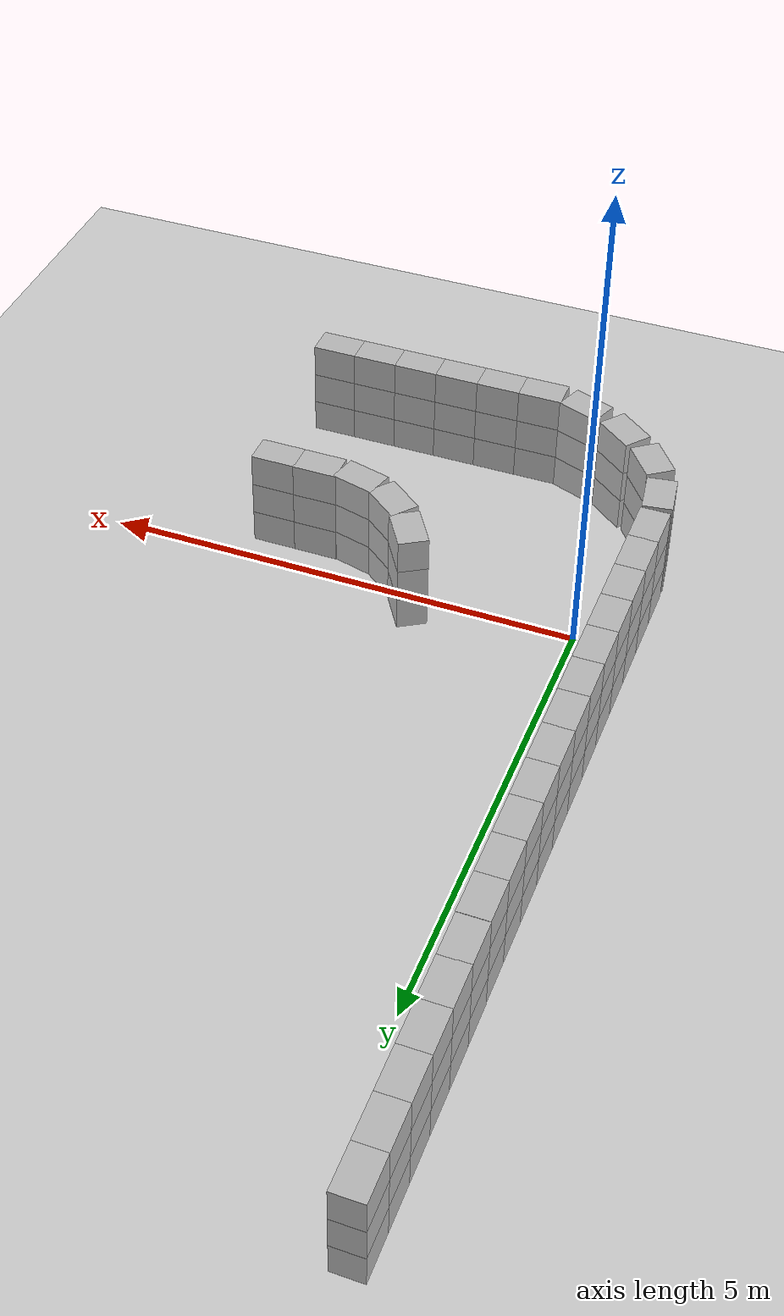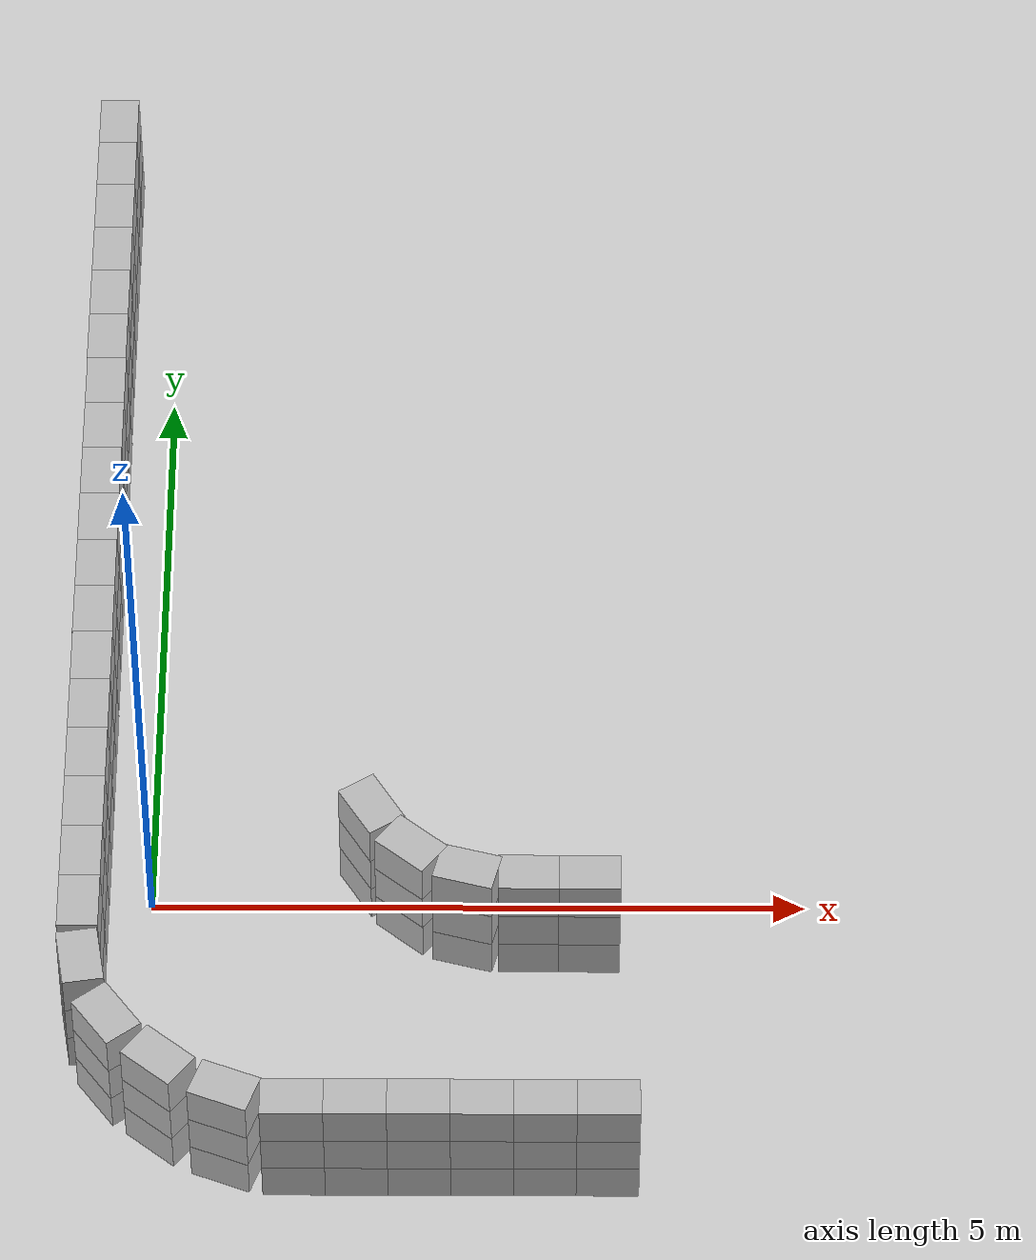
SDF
<sdf version="1.6">
 <world name="default">
  <model name="ground_plane">
   <static>1</static>
   <link name="link">
    <collision name="collision">
     <geometry><plane><normal>0 0 1</normal><size>100 100</size></plane></geometry>
     <surface>
      <contact><collide_bitmask>65535</collide_bitmask></contact>
      <friction><ode><mu>100</mu><mu2>50</mu2></ode></friction>
     </surface>
    </collision>
    <visual name="visual">
     <cast_shadows>0</cast_shadows>
     <geometry><plane><normal>0 0 1</normal><size>100 100</size></plane></geometry>
     <material>
      <script><uri>file://media/materials/scripts/gazebo.material</uri><name>Gazebo/Grey</name></script>
     </material>
    </visual>
   </link>
  </model>
  <model name="1_stack">
   <pose>0.654177 -2.37246 0 0 0 -1.93288</pose>
   <static>1</static>
   <link name="link_0">
    <collision name="collision_0">
     <pose>0 0 0.18 0 -0 3.14</pose>
     <geometry><box><size>0.31 0.465 0.36</size></box></geometry>
    </collision>
    <visual name="visual_0">
     <pose>0 0 0.18 0 -0 3.14</pose>
     <geometry><mesh><uri>model://L-corridor_curve_real/meshes/exact_blue_circle_border.dae</uri></mesh></geometry>
    </visual>
   </link>
   <link name="link_1">
    <collision name="collision_1">
     <pose>0 0 0.54 0 -0 3.14</pose>
     <geometry><box><size>0.31 0.465 0.36</size></box></geometry>
    </collision>
    <visual name="visual_1">
     <pose>0 0 0.54 0 -0 3.14</pose>
     <geometry><mesh><uri>model://L-corridor_curve_real/meshes/exact_red_circle_border.dae</uri></mesh></geometry>
    </visual>
   </link>
   <link name="link_2">
    <collision name="collision_2">
     <pose>0 0 0.9 0 -0 3.14</pose>
     <geometry><box><size>0.31 0.465 0.36</size></box></geometry>
    </collision>
    <visual name="visual_2">
     <pose>0 0 0.9 0 -0 3.14</pose>
     <geometry>
      <mesh><uri>model://L-corridor_curve_real/meshes/exact_green_circle_border.dae</uri></mesh>
     </geometry>
    </visual>
   </link>
  </model>
  <model name="1_stack_0">
   <pose>0.159717 -2.10664 0.001177 0 0 -2.24214</pose>
   <static>1</static>
   <link name="link_0">
    <collision name="collision_0">
     <pose>0 0 0.18 0 -0 3.14</pose>
     <geometry><box><size>0.31 0.465 0.36</size></box></geometry>
    </collision>
    <visual name="visual_0">
     <pose>0 0 0.18 0 -0 3.14</pose>
     <geometry><mesh><uri>model://L-corridor_curve_real/meshes/exact_blue_circle_border.dae</uri></mesh></geometry>
    </visual>
   </link>
   <link name="link_1">
    <collision name="collision_1">
     <pose>0 0 0.54 0 -0 3.14</pose>
     <geometry><box><size>0.31 0.465 0.36</size></box></geometry>
    </collision>
    <visual name="visual_1">
     <pose>0 0 0.54 0 -0 3.14</pose>
     <geometry><mesh><uri>model://L-corridor_curve_real/meshes/exact_red_circle_border.dae</uri></mesh></geometry>
    </visual>
   </link>
   <link name="link_2">
    <collision name="collision_2">
     <pose>0 0 0.9 0 -0 3.14</pose>
     <geometry><box><size>0.31 0.465 0.36</size></box></geometry>
    </collision>
    <visual name="visual_2">
     <pose>0 0 0.9 0 -0 3.14</pose>
     <geometry>
      <mesh><uri>model://L-corridor_curve_real/meshes/exact_green_circle_border.dae</uri></mesh>
     </geometry>
    </visual>
   </link>
  </model>
  <model name="1_stack_1">
   <pose>-0.453727 -1.21476 0 0 0 -2.98576</pose>
   <static>1</static>
   <link name="link_0">
    <collision name="collision_0">
     <pose>0 0 0.18 0 -0 3.14</pose>
     <geometry><box><size>0.31 0.465 0.36</size></box></geometry>
    </collision>
    <visual name="visual_0">
     <pose>0 0 0.18 0 -0 3.14</pose>
     <geometry><mesh><uri>model://L-corridor_curve_real/meshes/exact_blue_circle_border.dae</uri></mesh></geometry>
    </visual>
   </link>
   <link name="link_1">
    <collision name="collision_1">
     <pose>0 0 0.54 0 -0 3.14</pose>
     <geometry><box><size>0.31 0.465 0.36</size></box></geometry>
    </collision>
    <visual name="visual_1">
     <pose>0 0 0.54 0 -0 3.14</pose>
     <geometry><mesh><uri>model://L-corridor_curve_real/meshes/exact_red_circle_border.dae</uri></mesh></geometry>
    </visual>
   </link>
   <link name="link_2">
    <collision name="collision_2">
     <pose>0 0 0.9 0 -0 3.14</pose>
     <geometry><box><size>0.31 0.465 0.36</size></box></geometry>
    </collision>
    <visual name="visual_2">
     <pose>0 0 0.9 0 -0 3.14</pose>
     <geometry>
      <mesh><uri>model://L-corridor_curve_real/meshes/exact_green_circle_border.dae</uri></mesh>
     </geometry>
    </visual>
   </link>
  </model>
  <model name="1_stack_2">
   <pose>-0.236038 -1.73275 0 0 0 -2.4998</pose>
   <static>1</static>
   <link name="link_0">
    <collision name="collision_0">
     <pose>0 0 0.18 0 -0 3.14</pose>
     <geometry><box><size>0.31 0.465 0.36</size></box></geometry>
    </collision>
    <visual name="visual_0">
     <pose>0 0 0.18 0 -0 3.14</pose>
     <geometry><mesh><uri>model://L-corridor_curve_real/meshes/exact_blue_circle_border.dae</uri></mesh></geometry>
    </visual>
   </link>
   <link name="link_1">
    <collision name="collision_1">
     <pose>0 0 0.54 0 -0 3.14</pose>
     <geometry><box><size>0.31 0.465 0.36</size></box></geometry>
    </collision>
    <visual name="visual_1">
     <pose>0 0 0.54 0 -0 3.14</pose>
     <geometry><mesh><uri>model://L-corridor_curve_real/meshes/exact_red_circle_border.dae</uri></mesh></geometry>
    </visual>
   </link>
   <link name="link_2">
    <collision name="collision_2">
     <pose>0 0 0.9 0 -0 3.14</pose>
     <geometry><box><size>0.31 0.465 0.36</size></box></geometry>
    </collision>
    <visual name="visual_2">
     <pose>0 0 0.9 0 -0 3.14</pose>
     <geometry>
      <mesh><uri>model://L-corridor_curve_real/meshes/exact_green_circle_border.dae</uri></mesh>
     </geometry>
    </visual>
   </link>
  </model>
  <model name="realistic_curve_side2_2">
   <pose>3.96434 -1.14657 0 0 -0 1.5708</pose>
   <static>1</static>
   <link name="link_18_0">
    <collision name="collision_18_0">
     <pose>0.9 4.45 0.9 3.14159 -1.57079 3.14159</pose>
     <geometry><box><size>0.31 0.465 0.36</size></box></geometry>
    </collision>
    <visual name="visual_18_0">
     <pose>0.9 4.45 0.9 0 0 -1.5708</pose>
     <geometry><mesh><uri>model://L-corridor_curve_real/meshes/exact_blue_circle_border.dae</uri></mesh></geometry>
    </visual>
   </link>
   <link name="link_19_0">
    <collision name="collision_19_0">
     <pose>0.9 4.45 0.18 0 0 -1.5708</pose>
     <geometry><box><size>0.31 0.465 0.36</size></box></geometry>
    </collision>
    <visual name="visual_19_0">
     <pose>0.9 4.45 0.18 0 0 -1.5708</pose>
     <geometry><mesh><uri>model://L-corridor_curve_real/meshes/exact_red_circle_border.dae</uri></mesh></geometry>
    </visual>
   </link>
   <link name="link_20_0">
    <collision name="collision_20_0">
     <pose>0.9 4.45 0.54 0 0 -1.5708</pose>
     <geometry><box><size>0.31 0.465 0.36</size></box></geometry>
    </collision>
    <visual name="visual_20_0">
     <pose>0.9 4.45 0.54 0 0 -1.5708</pose>
     <geometry>
      <mesh><uri>model://L-corridor_curve_real/meshes/exact_green_circle_border.dae</uri></mesh>
     </geometry>
    </visual>
   </link>
   <link name="link_21_0">
    <collision name="collision_21_0">
     <pose>1.365 4.45 0.18 0 0 -1.5708</pose>
     <geometry><box><size>0.31 0.465 0.36</size></box></geometry>
    </collision>
    <visual name="visual_21_0">
     <pose>1.365 4.45 0.18 0 0 -1.5708</pose>
     <geometry><mesh><uri>model://L-corridor_curve_real/meshes/exact_blue_circle_border.dae</uri></mesh></geometry>
    </visual>
   </link>
   <link name="link_22_0">
    <collision name="collision_22_0">
     <pose>1.365 4.45 0.54 0 0 -1.5708</pose>
     <geometry><box><size>0.31 0.465 0.36</size></box></geometry>
    </collision>
    <visual name="visual_22_0">
     <pose>1.365 4.45 0.54 0 0 -1.5708</pose>
     <geometry><mesh><uri>model://L-corridor_curve_real/meshes/exact_red_circle_border.dae</uri></mesh></geometry>
    </visual>
   </link>
   <link name="link_23_0">
    <collision name="collision_23_0">
     <pose>1.365 4.45 0.9 0 0 -1.5708</pose>
     <geometry><box><size>0.31 0.465 0.36</size></box></geometry>
    </collision>
    <visual name="visual_23_0">
     <pose>1.365 4.45 0.9 0 0 -1.5708</pose>
     <geometry>
      <mesh><uri>model://L-corridor_curve_real/meshes/exact_green_circle_border.dae</uri></mesh>
     </geometry>
    </visual>
   </link>
   <link name="link_24_0">
    <collision name="collision_24_0">
     <pose>1.83 4.45 0.54 0 0 -1.5708</pose>
     <geometry><box><size>0.31 0.465 0.36</size></box></geometry>
    </collision>
    <visual name="visual_24_0">
     <pose>1.83 4.45 0.54 0 0 -1.5708</pose>
     <geometry><mesh><uri>model://L-corridor_curve_real/meshes/exact_blue_circle_border.dae</uri></mesh></geometry>
    </visual>
   </link>
   <link name="link_25_0">
    <collision name="collision_25_0">
     <pose>1.83 4.45 0.9 0 0 -1.5708</pose>
     <geometry><box><size>0.31 0.465 0.36</size></box></geometry>
    </collision>
    <visual name="visual_25_0">
     <pose>1.83 4.45 0.9 0 0 -1.5708</pose>
     <geometry><mesh><uri>model://L-corridor_curve_real/meshes/exact_red_circle_border.dae</uri></mesh></geometry>
    </visual>
   </link>
   <link name="link_26_0">
    <collision name="collision_26_0">
     <pose>1.83 4.45 0.18 0 0 -1.5708</pose>
     <geometry><box><size>0.31 0.465 0.36</size></box></geometry>
    </collision>
    <visual name="visual_26_0">
     <pose>1.83 4.45 0.18 0 0 -1.5708</pose>
     <geometry>
      <mesh><uri>model://L-corridor_curve_real/meshes/exact_green_circle_border.dae</uri></mesh>
     </geometry>
    </visual>
   </link>
   <link name="link_27_0">
    <collision name="collision_27_0">
     <pose>2.295 4.45 0.9 3.14159 -1.57079 3.14159</pose>
     <geometry><box><size>0.31 0.465 0.36</size></box></geometry>
    </collision>
    <visual name="visual_27_0">
     <pose>2.295 4.45 0.9 0 0 -1.5708</pose>
     <geometry><mesh><uri>model://L-corridor_curve_real/meshes/exact_blue_circle_border.dae</uri></mesh></geometry>
    </visual>
   </link>
   <link name="link_28_0">
    <collision name="collision_28_0">
     <pose>2.295 4.45 0.18 0 0 -1.5708</pose>
     <geometry><box><size>0.31 0.465 0.36</size></box></geometry>
    </collision>
    <visual name="visual_28_0">
     <pose>2.295 4.45 0.18 0 0 -1.5708</pose>
     <geometry><mesh><uri>model://L-corridor_curve_real/meshes/exact_red_circle_border.dae</uri></mesh></geometry>
    </visual>
   </link>
   <link name="link_29_0">
    <collision name="collision_29_0">
     <pose>2.295 4.45 0.54 0 0 -1.5708</pose>
     <geometry><box><size>0.31 0.465 0.36</size></box></geometry>
    </collision>
    <visual name="visual_29_0">
     <pose>2.295 4.45 0.54 0 0 -1.5708</pose>
     <geometry>
      <mesh><uri>model://L-corridor_curve_real/meshes/exact_green_circle_border.dae</uri></mesh>
     </geometry>
    </visual>
   </link>
   <link name="link_30_0">
    <collision name="collision_30_0">
     <pose>2.76 4.45 0.18 0 0 -1.5708</pose>
     <geometry><box><size>0.31 0.465 0.36</size></box></geometry>
    </collision>
    <visual name="visual_30_0">
     <pose>2.76 4.45 0.18 0 0 -1.5708</pose>
     <geometry><mesh><uri>model://L-corridor_curve_real/meshes/exact_blue_circle_border.dae</uri></mesh></geometry>
    </visual>
   </link>
   <link name="link_31_0">
    <collision name="collision_31_0">
     <pose>2.76 4.45 0.54 0 0 -1.5708</pose>
     <geometry><box><size>0.31 0.465 0.36</size></box></geometry>
    </collision>
    <visual name="visual_31_0">
     <pose>2.76 4.45 0.54 0 0 -1.5708</pose>
     <geometry><mesh><uri>model://L-corridor_curve_real/meshes/exact_red_circle_border.dae</uri></mesh></geometry>
    </visual>
   </link>
   <link name="link_32_0">
    <collision name="collision_32_0">
     <pose>2.76 4.45 0.9 0 0 -1.5708</pose>
     <geometry><box><size>0.31 0.465 0.36</size></box></geometry>
    </collision>
    <visual name="visual_32_0">
     <pose>2.76 4.45 0.9 0 0 -1.5708</pose>
     <geometry>
      <mesh><uri>model://L-corridor_curve_real/meshes/exact_green_circle_border.dae</uri></mesh>
     </geometry>
    </visual>
   </link>
   <link name="link_33_0">
    <collision name="collision_33_0">
     <pose>0.44 4.45 0.54 0 0 -1.5708</pose>
     <geometry><box><size>0.31 0.465 0.36</size></box></geometry>
    </collision>
    <visual name="visual_33_0">
     <pose>0.44 4.45 0.54 0 0 -1.5708</pose>
     <geometry><mesh><uri>model://L-corridor_curve_real/meshes/exact_blue_circle_border.dae</uri></mesh></geometry>
    </visual>
   </link>
   <link name="link_34_0">
    <collision name="collision_34_0">
     <pose>0.4 4.45 0.9 0 0 -1.5708</pose>
     <geometry><box><size>0.31 0.465 0.36</size></box></geometry>
    </collision>
    <visual name="visual_34_0">
     <pose>0.44 4.45 0.9 0 0 -1.5708</pose>
     <geometry><mesh><uri>model://L-corridor_curve_real/meshes/exact_red_circle_border.dae</uri></mesh></geometry>
    </visual>
   </link>
   <link name="link_35_0">
    <collision name="collision_35_0">
     <pose>0.44 4.45 0.18 0 0 -1.5708</pose>
     <geometry><box><size>0.31 0.465 0.36</size></box></geometry>
    </collision>
    <visual name="visual_35_0">
     <pose>0.44 4.45 0.18 0 0 -1.5708</pose>
     <geometry>
      <mesh><uri>model://L-corridor_curve_real/meshes/exact_green_circle_border.dae</uri></mesh>
     </geometry>
    </visual>
   </link>
  </model>
  <model name="realistic_curve_side2_2_0">
   <pose>3.96188 1.62711 0 0 -0 1.5708</pose>
   <static>1</static>
   <link name="link_18_0">
    <collision name="collision_18_0">
     <pose>0.9 4.45 0.9 3.14159 -1.57079 3.14159</pose>
     <geometry><box><size>0.31 0.465 0.36</size></box></geometry>
    </collision>
    <visual name="visual_18_0">
     <pose>0.9 4.45 0.9 0 0 -1.5708</pose>
     <geometry><mesh><uri>model://L-corridor_curve_real/meshes/exact_blue_circle_border.dae</uri></mesh></geometry>
    </visual>
   </link>
   <link name="link_19_0">
    <collision name="collision_19_0">
     <pose>0.9 4.45 0.18 0 0 -1.5708</pose>
     <geometry><box><size>0.31 0.465 0.36</size></box></geometry>
    </collision>
    <visual name="visual_19_0">
     <pose>0.9 4.45 0.18 0 0 -1.5708</pose>
     <geometry><mesh><uri>model://L-corridor_curve_real/meshes/exact_red_circle_border.dae</uri></mesh></geometry>
    </visual>
   </link>
   <link name="link_20_0">
    <collision name="collision_20_0">
     <pose>0.9 4.45 0.54 0 0 -1.5708</pose>
     <geometry><box><size>0.31 0.465 0.36</size></box></geometry>
    </collision>
    <visual name="visual_20_0">
     <pose>0.9 4.45 0.54 0 0 -1.5708</pose>
     <geometry>
      <mesh><uri>model://L-corridor_curve_real/meshes/exact_green_circle_border.dae</uri></mesh>
     </geometry>
    </visual>
   </link>
   <link name="link_21_0">
    <collision name="collision_21_0">
     <pose>1.365 4.45 0.18 0 0 -1.5708</pose>
     <geometry><box><size>0.31 0.465 0.36</size></box></geometry>
    </collision>
    <visual name="visual_21_0">
     <pose>1.365 4.45 0.18 0 0 -1.5708</pose>
     <geometry><mesh><uri>model://L-corridor_curve_real/meshes/exact_blue_circle_border.dae</uri></mesh></geometry>
    </visual>
   </link>
   <link name="link_22_0">
    <collision name="collision_22_0">
     <pose>1.365 4.45 0.54 0 0 -1.5708</pose>
     <geometry><box><size>0.31 0.465 0.36</size></box></geometry>
    </collision>
    <visual name="visual_22_0">
     <pose>1.365 4.45 0.54 0 0 -1.5708</pose>
     <geometry><mesh><uri>model://L-corridor_curve_real/meshes/exact_red_circle_border.dae</uri></mesh></geometry>
    </visual>
   </link>
   <link name="link_23_0">
    <collision name="collision_23_0">
     <pose>1.365 4.45 0.9 0 0 -1.5708</pose>
     <geometry><box><size>0.31 0.465 0.36</size></box></geometry>
    </collision>
    <visual name="visual_23_0">
     <pose>1.365 4.45 0.9 0 0 -1.5708</pose>
     <geometry>
      <mesh><uri>model://L-corridor_curve_real/meshes/exact_green_circle_border.dae</uri></mesh>
     </geometry>
    </visual>
   </link>
   <link name="link_24_0">
    <collision name="collision_24_0">
     <pose>1.83 4.45 0.54 0 0 -1.5708</pose>
     <geometry><box><size>0.31 0.465 0.36</size></box></geometry>
    </collision>
    <visual name="visual_24_0">
     <pose>1.83 4.45 0.54 0 0 -1.5708</pose>
     <geometry><mesh><uri>model://L-corridor_curve_real/meshes/exact_blue_circle_border.dae</uri></mesh></geometry>
    </visual>
   </link>
   <link name="link_25_0">
    <collision name="collision_25_0">
     <pose>1.83 4.45 0.9 0 0 -1.5708</pose>
     <geometry><box><size>0.31 0.465 0.36</size></box></geometry>
    </collision>
    <visual name="visual_25_0">
     <pose>1.83 4.45 0.9 0 0 -1.5708</pose>
     <geometry><mesh><uri>model://L-corridor_curve_real/meshes/exact_red_circle_border.dae</uri></mesh></geometry>
    </visual>
   </link>
   <link name="link_26_0">
    <collision name="collision_26_0">
     <pose>1.83 4.45 0.18 0 0 -1.5708</pose>
     <geometry><box><size>0.31 0.465 0.36</size></box></geometry>
    </collision>
    <visual name="visual_26_0">
     <pose>1.83 4.45 0.18 0 0 -1.5708</pose>
     <geometry>
      <mesh><uri>model://L-corridor_curve_real/meshes/exact_green_circle_border.dae</uri></mesh>
     </geometry>
    </visual>
   </link>
   <link name="link_27_0">
    <collision name="collision_27_0">
     <pose>2.295 4.45 0.9 3.14159 -1.57079 3.14159</pose>
     <geometry><box><size>0.31 0.465 0.36</size></box></geometry>
    </collision>
    <visual name="visual_27_0">
     <pose>2.295 4.45 0.9 0 0 -1.5708</pose>
     <geometry><mesh><uri>model://L-corridor_curve_real/meshes/exact_blue_circle_border.dae</uri></mesh></geometry>
    </visual>
   </link>
   <link name="link_28_0">
    <collision name="collision_28_0">
     <pose>2.295 4.45 0.18 0 0 -1.5708</pose>
     <geometry><box><size>0.31 0.465 0.36</size></box></geometry>
    </collision>
    <visual name="visual_28_0">
     <pose>2.295 4.45 0.18 0 0 -1.5708</pose>
     <geometry><mesh><uri>model://L-corridor_curve_real/meshes/exact_red_circle_border.dae</uri></mesh></geometry>
    </visual>
   </link>
   <link name="link_29_0">
    <collision name="collision_29_0">
     <pose>2.295 4.45 0.54 0 0 -1.5708</pose>
     <geometry><box><size>0.31 0.465 0.36</size></box></geometry>
    </collision>
    <visual name="visual_29_0">
     <pose>2.295 4.45 0.54 0 0 -1.5708</pose>
     <geometry>
      <mesh><uri>model://L-corridor_curve_real/meshes/exact_green_circle_border.dae</uri></mesh>
     </geometry>
    </visual>
   </link>
   <link name="link_30_0">
    <collision name="collision_30_0">
     <pose>2.76 4.45 0.18 0 0 -1.5708</pose>
     <geometry><box><size>0.31 0.465 0.36</size></box></geometry>
    </collision>
    <visual name="visual_30_0">
     <pose>2.76 4.45 0.18 0 0 -1.5708</pose>
     <geometry><mesh><uri>model://L-corridor_curve_real/meshes/exact_blue_circle_border.dae</uri></mesh></geometry>
    </visual>
   </link>
   <link name="link_31_0">
    <collision name="collision_31_0">
     <pose>2.76 4.45 0.54 0 0 -1.5708</pose>
     <geometry><box><size>0.31 0.465 0.36</size></box></geometry>
    </collision>
    <visual name="visual_31_0">
     <pose>2.76 4.45 0.54 0 0 -1.5708</pose>
     <geometry><mesh><uri>model://L-corridor_curve_real/meshes/exact_red_circle_border.dae</uri></mesh></geometry>
    </visual>
   </link>
   <link name="link_32_0">
    <collision name="collision_32_0">
     <pose>2.76 4.45 0.9 0 0 -1.5708</pose>
     <geometry><box><size>0.31 0.465 0.36</size></box></geometry>
    </collision>
    <visual name="visual_32_0">
     <pose>2.76 4.45 0.9 0 0 -1.5708</pose>
     <geometry>
      <mesh><uri>model://L-corridor_curve_real/meshes/exact_green_circle_border.dae</uri></mesh>
     </geometry>
    </visual>
   </link>
   <link name="link_33_0">
    <collision name="collision_33_0">
     <pose>0.44 4.45 0.54 0 0 -1.5708</pose>
     <geometry><box><size>0.31 0.465 0.36</size></box></geometry>
    </collision>
    <visual name="visual_33_0">
     <pose>0.44 4.45 0.54 0 0 -1.5708</pose>
     <geometry><mesh><uri>model://L-corridor_curve_real/meshes/exact_blue_circle_border.dae</uri></mesh></geometry>
    </visual>
   </link>
   <link name="link_34_0">
    <collision name="collision_34_0">
     <pose>0.4 4.45 0.9 0 0 -1.5708</pose>
     <geometry><box><size>0.31 0.465 0.36</size></box></geometry>
    </collision>
    <visual name="visual_34_0">
     <pose>0.44 4.45 0.9 0 0 -1.5708</pose>
     <geometry><mesh><uri>model://L-corridor_curve_real/meshes/exact_red_circle_border.dae</uri></mesh></geometry>
    </visual>
   </link>
   <link name="link_35_0">
    <collision name="collision_35_0">
     <pose>0.44 4.45 0.18 0 0 -1.5708</pose>
     <geometry><box><size>0.31 0.465 0.36</size></box></geometry>
    </collision>
    <visual name="visual_35_0">
     <pose>0.44 4.45 0.18 0 0 -1.5708</pose>
     <geometry>
      <mesh><uri>model://L-corridor_curve_real/meshes/exact_green_circle_border.dae</uri></mesh>
     </geometry>
    </visual>
   </link>
  </model>
  <model name="realistic_curve_side2_1">
   <pose>3.4742 -1.16832 0 0 -0 1.5708</pose>
   <static>1</static>
   <link name="link_0_0">
    <collision name="collision_0_0">
     <pose>-1.3 0 0.18 0 -0 0</pose>
     <geometry><box><size>0.31 0.465 0.36</size></box></geometry>
    </collision>
    <visual name="visual_0_0">
     <pose>-1.3 0 0.18 0 -0 0</pose>
     <geometry><mesh><uri>model://L-corridor_curve_real/meshes/exact_blue_circle_border.dae</uri></mesh></geometry>
    </visual>
   </link>
   <link name="link_1_0">
    <collision name="collision_1_0">
     <pose>-1.3 0.54 0 0 -0 0</pose>
     <geometry><box><size>0.31 0.465 0.36</size></box></geometry>
    </collision>
    <visual name="visual_1_0">
     <pose>-1.3 0 0.54 0 -0 0</pose>
     <geometry><mesh><uri>model://L-corridor_curve_real/meshes/exact_red_circle_border.dae</uri></mesh></geometry>
    </visual>
   </link>
   <link name="link_2_0">
    <collision name="collision_2_0">
     <pose>-1.3 0 0.9 0 -0 0</pose>
     <geometry><box><size>0.31 0.465 0.36</size></box></geometry>
    </collision>
    <visual name="visual_2_0">
     <pose>-1.3 0 0.9 0 -0 0</pose>
     <geometry>
      <mesh><uri>model://L-corridor_curve_real/meshes/exact_green_circle_border.dae</uri></mesh>
     </geometry>
    </visual>
   </link>
   <link name="link_3_0">
    <collision name="collision_3_0">
     <pose>-1.3 0.465 0.54 0 -0 0</pose>
     <geometry><box><size>0.31 0.465 0.36</size></box></geometry>
    </collision>
    <visual name="visual_3_0">
     <pose>-1.3 0.465 0.54 0 -0 0</pose>
     <geometry><mesh><uri>model://L-corridor_curve_real/meshes/exact_blue_circle_border.dae</uri></mesh></geometry>
    </visual>
   </link>
   <link name="link_4_0">
    <collision name="collision_4_0">
     <pose>-1.3 0.465 0.9 0 -0 0</pose>
     <geometry><box><size>0.31 0.465 0.36</size></box></geometry>
    </collision>
    <visual name="visual_4_0">
     <pose>-1.3 0.465 0.9 0 -0 0</pose>
     <geometry><mesh><uri>model://L-corridor_curve_real/meshes/exact_red_circle_border.dae</uri></mesh></geometry>
    </visual>
   </link>
   <link name="link_5_0">
    <collision name="collision_5_0">
     <pose>-1.3 0.465 0.18 0 -0 0</pose>
     <geometry><box><size>0.31 0.465 0.36</size></box></geometry>
    </collision>
    <visual name="visual_5_0">
     <pose>-1.3 0.465 0.18 0 -0 0</pose>
     <geometry>
      <mesh><uri>model://L-corridor_curve_real/meshes/exact_green_circle_border.dae</uri></mesh>
     </geometry>
    </visual>
   </link>
   <link name="link_6_0">
    <collision name="collision_6_0">
     <pose>-1.3 0.93 0.9 0 -0 0</pose>
     <geometry><box><size>0.31 0.465 0.36</size></box></geometry>
    </collision>
    <visual name="visual_6_0">
     <pose>-1.3 0.93 0.9 0 -0 0</pose>
     <geometry><mesh><uri>model://L-corridor_curve_real/meshes/exact_blue_circle_border.dae</uri></mesh></geometry>
    </visual>
   </link>
   <link name="link_7_0">
    <collision name="collision_7_0">
     <pose>-1.3 0.93 0.18 0 -0 0</pose>
     <geometry><box><size>0.31 0.465 0.36</size></box></geometry>
    </collision>
    <visual name="visual_7_0">
     <pose>-1.3 0.93 0.18 0 -0 0</pose>
     <geometry><mesh><uri>model://L-corridor_curve_real/meshes/exact_red_circle_border.dae</uri></mesh></geometry>
    </visual>
   </link>
   <link name="link_8_0">
    <collision name="collision_8_0">
     <pose>-1.3 0.93 0.54 0 -0 0</pose>
     <geometry><box><size>0.31 0.465 0.36</size></box></geometry>
    </collision>
    <visual name="visual_8_0">
     <pose>-1.3 0.93 0.54 0 -0 0</pose>
     <geometry>
      <mesh><uri>model://L-corridor_curve_real/meshes/exact_green_circle_border.dae</uri></mesh>
     </geometry>
    </visual>
   </link>
   <link name="link_9_0">
    <collision name="collision_9_0">
     <pose>-1.3 1.395 0.18 0 -0 0</pose>
     <geometry><box><size>0.31 0.465 0.36</size></box></geometry>
    </collision>
    <visual name="visual_9_0">
     <pose>-1.3 1.395 0.18 0 -0 0</pose>
     <geometry><mesh><uri>model://L-corridor_curve_real/meshes/exact_blue_circle_border.dae</uri></mesh></geometry>
    </visual>
   </link>
   <link name="link_10_0">
    <collision name="collision_10_0">
     <pose>-1.3 1.395 0.54 0 -0 0</pose>
     <geometry><box><size>0.31 0.465 0.36</size></box></geometry>
    </collision>
    <visual name="visual_10_0">
     <pose>-1.3 1.395 0.54 0 -0 0</pose>
     <geometry><mesh><uri>model://L-corridor_curve_real/meshes/exact_red_circle_border.dae</uri></mesh></geometry>
    </visual>
   </link>
   <link name="link_11_0">
    <collision name="collision_11_0">
     <pose>-1.3 1.395 0.9 0 -0 0</pose>
     <geometry><box><size>0.31 0.465 0.36</size></box></geometry>
    </collision>
    <visual name="visual_11_0">
     <pose>-1.3 1.395 0.9 0 -0 0</pose>
     <geometry>
      <mesh><uri>model://L-corridor_curve_real/meshes/exact_green_circle_border.dae</uri></mesh>
     </geometry>
    </visual>
   </link>
   <link name="link_12_0">
    <collision name="collision_12_0">
     <pose>-1.3 1.86 0.54 0 -0 0</pose>
     <geometry><box><size>0.31 0.465 0.36</size></box></geometry>
    </collision>
    <visual name="visual_12_0">
     <pose>-1.3 1.86 0.54 0 -0 0</pose>
     <geometry><mesh><uri>model://L-corridor_curve_real/meshes/exact_blue_circle_border.dae</uri></mesh></geometry>
    </visual>
   </link>
   <link name="link_13_0">
    <collision name="collision_13_0">
     <pose>-1.3 1.86 0.9 0 -0 0</pose>
     <geometry><box><size>0.31 0.465 0.36</size></box></geometry>
    </collision>
    <visual name="visual_13_0">
     <pose>-1.3 1.86 0.9 0 -0 0</pose>
     <geometry><mesh><uri>model://L-corridor_curve_real/meshes/exact_red_circle_border.dae</uri></mesh></geometry>
    </visual>
   </link>
   <link name="link_14_0">
    <collision name="collision_14_0">
     <pose>-1.3 1.86 0.18 0 -0 0</pose>
     <geometry><box><size>0.31 0.465 0.36</size></box></geometry>
    </collision>
    <visual name="visual_14_0">
     <pose>-1.3 1.86 0.18 0 -0 0</pose>
     <geometry>
      <mesh><uri>model://L-corridor_curve_real/meshes/exact_green_circle_border.dae</uri></mesh>
     </geometry>
    </visual>
   </link>
   <link name="link_15_0">
    <collision name="collision_15_0">
     <pose>-1.3 2.325 0 0 -0 0</pose>
     <geometry><box><size>0.31 0.465 0.36</size></box></geometry>
    </collision>
    <visual name="visual_15_0">
     <pose>-1.3 2.325 0.9 0 -0 0</pose>
     <geometry><mesh><uri>model://L-corridor_curve_real/meshes/exact_blue_circle_border.dae</uri></mesh></geometry>
    </visual>
   </link>
   <link name="link_16_0">
    <collision name="collision_16_0">
     <pose>-1.3 2.325 0.18 0 -0 0</pose>
     <geometry><box><size>0.31 0.465 0.36</size></box></geometry>
    </collision>
    <visual name="visual_16_0">
     <pose>-1.3 2.325 0.18 0 -0 0</pose>
     <geometry><mesh><uri>model://L-corridor_curve_real/meshes/exact_red_circle_border.dae</uri></mesh></geometry>
    </visual>
   </link>
   <link name="link_17_0">
    <collision name="collision_17_0">
     <pose>-1.3 2.325 0.54 0 -0 0</pose>
     <geometry><box><size>0.31 0.465 0.36</size></box></geometry>
    </collision>
    <visual name="visual_17_0">
     <pose>-1.3 2.325 0.54 0 -0 0</pose>
     <geometry>
      <mesh><uri>model://L-corridor_curve_real/meshes/exact_green_circle_border.dae</uri></mesh>
     </geometry>
    </visual>
   </link>
  </model>
  <model name="1_stack_3">
   <pose>3.34415 -0.438532 0 0 -0 1.5708</pose>
   <static>1</static>
   <link name="link_0">
    <collision name="collision_0">
     <pose>0 0 0.18 0 -0 3.14</pose>
     <geometry><box><size>0.31 0.465 0.36</size></box></geometry>
    </collision>
    <visual name="visual_0">
     <pose>0 0 0.18 0 -0 3.14</pose>
     <geometry><mesh><uri>model://L-corridor_curve_real/meshes/exact_blue_circle_border.dae</uri></mesh></geometry>
    </visual>
   </link>
   <link name="link_1">
    <collision name="collision_1">
     <pose>0 0 0.54 0 -0 3.14</pose>
     <geometry><box><size>0.31 0.465 0.36</size></box></geometry>
    </collision>
    <visual name="visual_1">
     <pose>0 0 0.54 0 -0 3.14</pose>
     <geometry><mesh><uri>model://L-corridor_curve_real/meshes/exact_red_circle_border.dae</uri></mesh></geometry>
    </visual>
   </link>
   <link name="link_2">
    <collision name="collision_2">
     <pose>0 0 0.9 0 -0 3.14</pose>
     <geometry><box><size>0.31 0.465 0.36</size></box></geometry>
    </collision>
    <visual name="visual_2">
     <pose>0 0 0.9 0 -0 3.14</pose>
     <geometry>
      <mesh><uri>model://L-corridor_curve_real/meshes/exact_green_circle_border.dae</uri></mesh>
     </geometry>
    </visual>
   </link>
  </model>
  <model name="realistic_curve_side2_2_1">
   <pose>3.95777 4.41522 0 0 -0 1.5708</pose>
   <static>1</static>
   <link name="link_18_0">
    <collision name="collision_18_0">
     <pose>0.9 4.45 0.9 3.14159 -1.57079 3.14159</pose>
     <geometry><box><size>0.31 0.465 0.36</size></box></geometry>
    </collision>
    <visual name="visual_18_0">
     <pose>0.9 4.45 0.9 0 0 -1.5708</pose>
     <geometry><mesh><uri>model://L-corridor_curve_real/meshes/exact_blue_circle_border.dae</uri></mesh></geometry>
    </visual>
   </link>
   <link name="link_19_0">
    <collision name="collision_19_0">
     <pose>0.9 4.45 0.18 0 0 -1.5708</pose>
     <geometry><box><size>0.31 0.465 0.36</size></box></geometry>
    </collision>
    <visual name="visual_19_0">
     <pose>0.9 4.45 0.18 0 0 -1.5708</pose>
     <geometry><mesh><uri>model://L-corridor_curve_real/meshes/exact_red_circle_border.dae</uri></mesh></geometry>
    </visual>
   </link>
   <link name="link_20_0">
    <collision name="collision_20_0">
     <pose>0.9 4.45 0.54 0 0 -1.5708</pose>
     <geometry><box><size>0.31 0.465 0.36</size></box></geometry>
    </collision>
    <visual name="visual_20_0">
     <pose>0.9 4.45 0.54 0 0 -1.5708</pose>
     <geometry>
      <mesh><uri>model://L-corridor_curve_real/meshes/exact_green_circle_border.dae</uri></mesh>
     </geometry>
    </visual>
   </link>
   <link name="link_21_0">
    <collision name="collision_21_0">
     <pose>1.365 4.45 0.18 0 0 -1.5708</pose>
     <geometry><box><size>0.31 0.465 0.36</size></box></geometry>
    </collision>
    <visual name="visual_21_0">
     <pose>1.365 4.45 0.18 0 0 -1.5708</pose>
     <geometry><mesh><uri>model://L-corridor_curve_real/meshes/exact_blue_circle_border.dae</uri></mesh></geometry>
    </visual>
   </link>
   <link name="link_22_0">
    <collision name="collision_22_0">
     <pose>1.365 4.45 0.54 0 0 -1.5708</pose>
     <geometry><box><size>0.31 0.465 0.36</size></box></geometry>
    </collision>
    <visual name="visual_22_0">
     <pose>1.365 4.45 0.54 0 0 -1.5708</pose>
     <geometry><mesh><uri>model://L-corridor_curve_real/meshes/exact_red_circle_border.dae</uri></mesh></geometry>
    </visual>
   </link>
   <link name="link_23_0">
    <collision name="collision_23_0">
     <pose>1.365 4.45 0.9 0 0 -1.5708</pose>
     <geometry><box><size>0.31 0.465 0.36</size></box></geometry>
    </collision>
    <visual name="visual_23_0">
     <pose>1.365 4.45 0.9 0 0 -1.5708</pose>
     <geometry>
      <mesh><uri>model://L-corridor_curve_real/meshes/exact_green_circle_border.dae</uri></mesh>
     </geometry>
    </visual>
   </link>
   <link name="link_24_0">
    <collision name="collision_24_0">
     <pose>1.83 4.45 0.54 0 0 -1.5708</pose>
     <geometry><box><size>0.31 0.465 0.36</size></box></geometry>
    </collision>
    <visual name="visual_24_0">
     <pose>1.83 4.45 0.54 0 0 -1.5708</pose>
     <geometry><mesh><uri>model://L-corridor_curve_real/meshes/exact_blue_circle_border.dae</uri></mesh></geometry>
    </visual>
   </link>
   <link name="link_25_0">
    <collision name="collision_25_0">
     <pose>1.83 4.45 0.9 0 0 -1.5708</pose>
     <geometry><box><size>0.31 0.465 0.36</size></box></geometry>
    </collision>
    <visual name="visual_25_0">
     <pose>1.83 4.45 0.9 0 0 -1.5708</pose>
     <geometry><mesh><uri>model://L-corridor_curve_real/meshes/exact_red_circle_border.dae</uri></mesh></geometry>
    </visual>
   </link>
   <link name="link_26_0">
    <collision name="collision_26_0">
     <pose>1.83 4.45 0.18 0 0 -1.5708</pose>
     <geometry><box><size>0.31 0.465 0.36</size></box></geometry>
    </collision>
    <visual name="visual_26_0">
     <pose>1.83 4.45 0.18 0 0 -1.5708</pose>
     <geometry>
      <mesh><uri>model://L-corridor_curve_real/meshes/exact_green_circle_border.dae</uri></mesh>
     </geometry>
    </visual>
   </link>
   <link name="link_27_0">
    <collision name="collision_27_0">
     <pose>2.295 4.45 0.9 3.14159 -1.57079 3.14159</pose>
     <geometry><box><size>0.31 0.465 0.36</size></box></geometry>
    </collision>
    <visual name="visual_27_0">
     <pose>2.295 4.45 0.9 0 0 -1.5708</pose>
     <geometry><mesh><uri>model://L-corridor_curve_real/meshes/exact_blue_circle_border.dae</uri></mesh></geometry>
    </visual>
   </link>
   <link name="link_28_0">
    <collision name="collision_28_0">
     <pose>2.295 4.45 0.18 0 0 -1.5708</pose>
     <geometry><box><size>0.31 0.465 0.36</size></box></geometry>
    </collision>
    <visual name="visual_28_0">
     <pose>2.295 4.45 0.18 0 0 -1.5708</pose>
     <geometry><mesh><uri>model://L-corridor_curve_real/meshes/exact_red_circle_border.dae</uri></mesh></geometry>
    </visual>
   </link>
   <link name="link_29_0">
    <collision name="collision_29_0">
     <pose>2.295 4.45 0.54 0 0 -1.5708</pose>
     <geometry><box><size>0.31 0.465 0.36</size></box></geometry>
    </collision>
    <visual name="visual_29_0">
     <pose>2.295 4.45 0.54 0 0 -1.5708</pose>
     <geometry>
      <mesh><uri>model://L-corridor_curve_real/meshes/exact_green_circle_border.dae</uri></mesh>
     </geometry>
    </visual>
   </link>
   <link name="link_30_0">
    <collision name="collision_30_0">
     <pose>2.76 4.45 0.18 0 0 -1.5708</pose>
     <geometry><box><size>0.31 0.465 0.36</size></box></geometry>
    </collision>
    <visual name="visual_30_0">
     <pose>2.76 4.45 0.18 0 0 -1.5708</pose>
     <geometry><mesh><uri>model://L-corridor_curve_real/meshes/exact_blue_circle_border.dae</uri></mesh></geometry>
    </visual>
   </link>
   <link name="link_31_0">
    <collision name="collision_31_0">
     <pose>2.76 4.45 0.54 0 0 -1.5708</pose>
     <geometry><box><size>0.31 0.465 0.36</size></box></geometry>
    </collision>
    <visual name="visual_31_0">
     <pose>2.76 4.45 0.54 0 0 -1.5708</pose>
     <geometry><mesh><uri>model://L-corridor_curve_real/meshes/exact_red_circle_border.dae</uri></mesh></geometry>
    </visual>
   </link>
   <link name="link_32_0">
    <collision name="collision_32_0">
     <pose>2.76 4.45 0.9 0 0 -1.5708</pose>
     <geometry><box><size>0.31 0.465 0.36</size></box></geometry>
    </collision>
    <visual name="visual_32_0">
     <pose>2.76 4.45 0.9 0 0 -1.5708</pose>
     <geometry>
      <mesh><uri>model://L-corridor_curve_real/meshes/exact_green_circle_border.dae</uri></mesh>
     </geometry>
    </visual>
   </link>
   <link name="link_33_0">
    <collision name="collision_33_0">
     <pose>0.44 4.45 0.54 0 0 -1.5708</pose>
     <geometry><box><size>0.31 0.465 0.36</size></box></geometry>
    </collision>
    <visual name="visual_33_0">
     <pose>0.44 4.45 0.54 0 0 -1.5708</pose>
     <geometry><mesh><uri>model://L-corridor_curve_real/meshes/exact_blue_circle_border.dae</uri></mesh></geometry>
    </visual>
   </link>
   <link name="link_34_0">
    <collision name="collision_34_0">
     <pose>0.4 4.45 0.9 0 0 -1.5708</pose>
     <geometry><box><size>0.31 0.465 0.36</size></box></geometry>
    </collision>
    <visual name="visual_34_0">
     <pose>0.44 4.45 0.9 0 0 -1.5708</pose>
     <geometry><mesh><uri>model://L-corridor_curve_real/meshes/exact_red_circle_border.dae</uri></mesh></geometry>
    </visual>
   </link>
   <link name="link_35_0">
    <collision name="collision_35_0">
     <pose>0.44 4.45 0.18 0 0 -1.5708</pose>
     <geometry><box><size>0.31 0.465 0.36</size></box></geometry>
    </collision>
    <visual name="visual_35_0">
     <pose>0.44 4.45 0.18 0 0 -1.5708</pose>
     <geometry>
      <mesh><uri>model://L-corridor_curve_real/meshes/exact_green_circle_border.dae</uri></mesh>
     </geometry>
    </visual>
   </link>
  </model>
  <model name="1_stack_4">
   <pose>2.88959 -0.43581 0 0 -0 1.5708</pose>
   <static>1</static>
   <link name="link_0">
    <collision name="collision_0">
     <pose>0 0 0.18 0 -0 3.14</pose>
     <geometry><box><size>0.31 0.465 0.36</size></box></geometry>
    </collision>
    <visual name="visual_0">
     <pose>0 0 0.18 0 -0 3.14</pose>
     <geometry><mesh><uri>model://L-corridor_curve_real/meshes/exact_blue_circle_border.dae</uri></mesh></geometry>
    </visual>
   </link>
   <link name="link_1">
    <collision name="collision_1">
     <pose>0 0 0.54 0 -0 3.14</pose>
     <geometry><box><size>0.31 0.465 0.36</size></box></geometry>
    </collision>
    <visual name="visual_1">
     <pose>0 0 0.54 0 -0 3.14</pose>
     <geometry><mesh><uri>model://L-corridor_curve_real/meshes/exact_red_circle_border.dae</uri></mesh></geometry>
    </visual>
   </link>
   <link name="link_2">
    <collision name="collision_2">
     <pose>0 0 0.9 0 -0 3.14</pose>
     <geometry><box><size>0.31 0.465 0.36</size></box></geometry>
    </collision>
    <visual name="visual_2">
     <pose>0 0 0.9 0 -0 3.14</pose>
     <geometry>
      <mesh><uri>model://L-corridor_curve_real/meshes/exact_green_circle_border.dae</uri></mesh>
     </geometry>
    </visual>
   </link>
  </model>
  <model name="1_stack_5">
   <pose>2.42227 -0.38528 0 0 -0 1.31313</pose>
   <static>1</static>
   <link name="link_0">
    <collision name="collision_0">
     <pose>0 0 0.18 0 -0 3.14</pose>
     <geometry><box><size>0.31 0.465 0.36</size></box></geometry>
    </collision>
    <visual name="visual_0">
     <pose>0 0 0.18 0 -0 3.14</pose>
     <geometry><mesh><uri>model://L-corridor_curve_real/meshes/exact_blue_circle_border.dae</uri></mesh></geometry>
    </visual>
   </link>
   <link name="link_1">
    <collision name="collision_1">
     <pose>0 0 0.54 0 -0 3.14</pose>
     <geometry><box><size>0.31 0.465 0.36</size></box></geometry>
    </collision>
    <visual name="visual_1">
     <pose>0 0 0.54 0 -0 3.14</pose>
     <geometry><mesh><uri>model://L-corridor_curve_real/meshes/exact_red_circle_border.dae</uri></mesh></geometry>
    </visual>
   </link>
   <link name="link_2">
    <collision name="collision_2">
     <pose>0 0 0.9 0 -0 3.14</pose>
     <geometry><box><size>0.31 0.465 0.36</size></box></geometry>
    </collision>
    <visual name="visual_2">
     <pose>0 0 0.9 0 -0 3.14</pose>
     <geometry>
      <mesh><uri>model://L-corridor_curve_real/meshes/exact_green_circle_border.dae</uri></mesh>
     </geometry>
    </visual>
   </link>
  </model>
  <model name="1_stack_6">
   <pose>1.99842 -0.172387 0 0 -0 0.894351</pose>
   <static>1</static>
   <link name="link_0">
    <collision name="collision_0">
     <pose>0 0 0.18 0 -0 3.14</pose>
     <geometry><box><size>0.31 0.465 0.36</size></box></geometry>
    </collision>
    <visual name="visual_0">
     <pose>0 0 0.18 0 -0 3.14</pose>
     <geometry><mesh><uri>model://L-corridor_curve_real/meshes/exact_blue_circle_border.dae</uri></mesh></geometry>
    </visual>
   </link>
   <link name="link_1">
    <collision name="collision_1">
     <pose>0 0 0.54 0 -0 3.14</pose>
     <geometry><box><size>0.31 0.465 0.36</size></box></geometry>
    </collision>
    <visual name="visual_1">
     <pose>0 0 0.54 0 -0 3.14</pose>
     <geometry><mesh><uri>model://L-corridor_curve_real/meshes/exact_red_circle_border.dae</uri></mesh></geometry>
    </visual>
   </link>
   <link name="link_2">
    <collision name="collision_2">
     <pose>0 0 0.9 0 -0 3.14</pose>
     <geometry><box><size>0.31 0.465 0.36</size></box></geometry>
    </collision>
    <visual name="visual_2">
     <pose>0 0 0.9 0 -0 3.14</pose>
     <geometry>
      <mesh><uri>model://L-corridor_curve_real/meshes/exact_green_circle_border.dae</uri></mesh>
     </geometry>
    </visual>
   </link>
  </model>
  <model name="1_stack_7">
   <pose>1.69335 0.196709 0 0 -0 0.557073</pose>
   <static>1</static>
   <link name="link_0">
    <collision name="collision_0">
     <pose>0 0 0.18 0 -0 3.14</pose>
     <geometry><box><size>0.31 0.465 0.36</size></box></geometry>
    </collision>
    <visual name="visual_0">
     <pose>0 0 0.18 0 -0 3.14</pose>
     <geometry><mesh><uri>model://L-corridor_curve_real/meshes/exact_blue_circle_border.dae</uri></mesh></geometry>
    </visual>
   </link>
   <link name="link_1">
    <collision name="collision_1">
     <pose>0 0 0.54 0 -0 3.14</pose>
     <geometry><box><size>0.31 0.465 0.36</size></box></geometry>
    </collision>
    <visual name="visual_1">
     <pose>0 0 0.54 0 -0 3.14</pose>
     <geometry><mesh><uri>model://L-corridor_curve_real/meshes/exact_red_circle_border.dae</uri></mesh></geometry>
    </visual>
   </link>
   <link name="link_2">
    <collision name="collision_2">
     <pose>0 0 0.9 0 -0 3.14</pose>
     <geometry><box><size>0.31 0.465 0.36</size></box></geometry>
    </collision>
    <visual name="visual_2">
     <pose>0 0 0.9 0 -0 3.14</pose>
     <geometry>
      <mesh><uri>model://L-corridor_curve_real/meshes/exact_green_circle_border.dae</uri></mesh>
     </geometry>
    </visual>
   </link>
  </model>
 </world>
</sdf>
